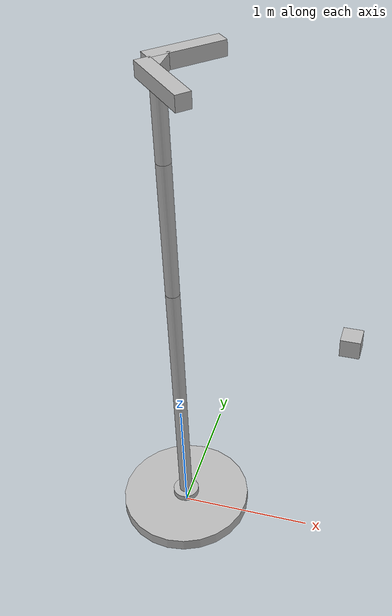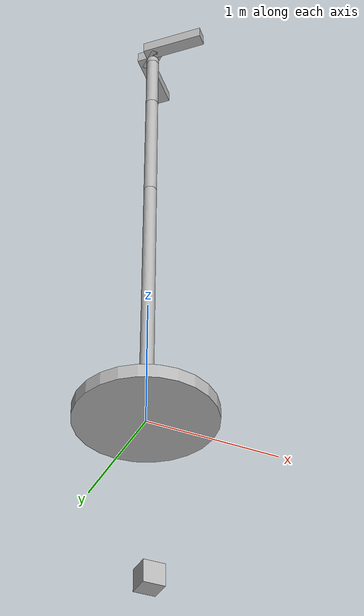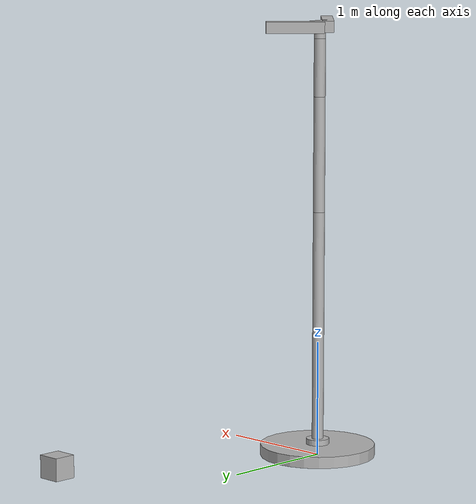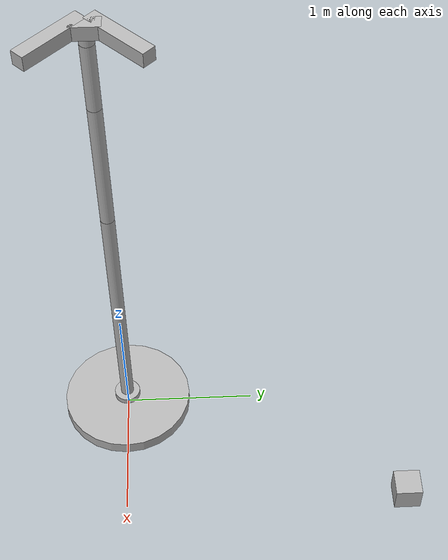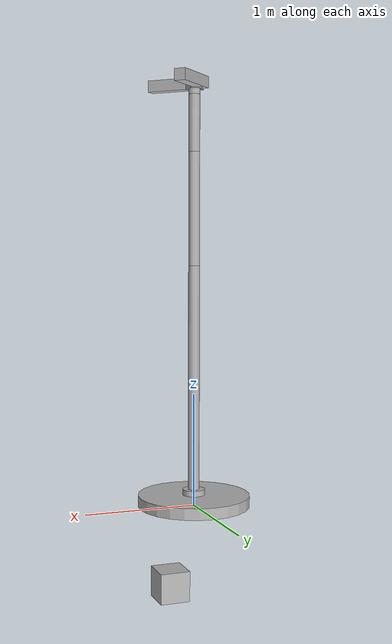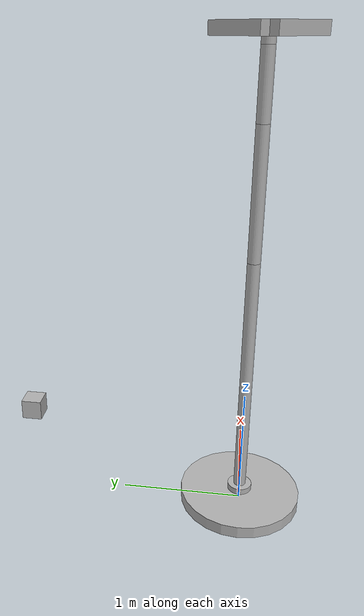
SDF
<?xml version='1.0'?>
<sdf version='1.4'>
    <model name="my_robot">
        <static>false</static>
        <self_collide>1</self_collide>
        <link name='chassis'>
            <pose>0 0 .05 0 0 0</pose>
            <inertial>
                <mass>50</mass>
            </inertial>
            <collision name='collision'>
                <geometry>
                    <cylinder>
                        <radius>.5</radius>
                        <length>.1</length>
                    </cylinder>
                </geometry>
            </collision>

            <visual name='visual'>
                <geometry>
                    <cylinder>
                        <radius>.5</radius>
                        <length>.1</length>
                    </cylinder>
                </geometry>
            </visual>
        </link>
        <link name='arm1'>
            <pose>0 0 .125 0 0 0</pose>

            <collision name='collision'>
                <geometry>
                    <cylinder>
                        <radius>.1</radius>
                        <length>.05</length>
                    </cylinder>
                </geometry>
            </collision>

            <visual name='visual'>
                <geometry>
                    <cylinder>
                        <radius>.1</radius>
                        <length>.05</length>
                    </cylinder>
                </geometry>
            </visual>
        </link>
        <link name='arm2'>
            <pose>0 0 1.15 0 0 0</pose>

            <collision name='collision'>
                <geometry>
                    <cylinder>
                        <radius>.05</radius>
                        <length>2.0</length>
                    </cylinder>
                </geometry>
            </collision>

            <visual name='visual'>
                <geometry>
                    <cylinder>
                        <radius>.05</radius>
                        <length>2.0</length>
                    </cylinder>
                </geometry>
            </visual>
        </link>
        <link name='arm3'>
            <pose>0 0 2.65 0 0 0</pose>
            <gravity>0</gravity>
            <collision name='collision'>
                <geometry>
                    <cylinder>
                        <radius>.05</radius>
                        <length>1</length>
                    </cylinder>
                </geometry>
            </collision>

            <visual name='visual'>
                <geometry>
                    <cylinder>
                        <radius>.05</radius>
                        <length>1</length>
                    </cylinder>
                </geometry>
            </visual>
        </link>
        <link name='arm4'>
            <pose>0 0 3.4 0 0 0</pose>
            <gravity>0</gravity>
            <collision name='collision'>
                <geometry>
                    <cylinder>
                        <radius>.05</radius>
                        <length>.5</length>
                    </cylinder>
                </geometry>
            </collision>

            <visual name='visual'>
                <geometry>
                    <cylinder>
                        <radius>.05</radius>
                        <length>.5</length>
                    </cylinder>
                </geometry>
            </visual>
        </link>
        <link name='arm5'>
            <pose>0 0 3.675 0 0 0</pose>

            <collision name='collision'>
                <geometry>
                    <cylinder>
                        <radius>.05</radius>
                        <length>0.05</length>
                    </cylinder>
                </geometry>
            </collision>

            <visual name='visual'>
                <geometry>
                    <cylinder>
                        <radius>.05</radius>
                        <length>0.05</length>
                    </cylinder>
                </geometry>
            </visual>
        </link>

        <link name="palm">
            <pose>0.0 0.0 3.75 0 0 0</pose>
            <inertial>
                <inertia>
                    <ixx>0.01</ixx>
                    <ixy>0</ixy>
                    <ixz>0</ixz>
                    <iyy>0.01</iyy>
                    <iyz>0</iyz>
                    <izz>0.01</izz>
                </inertia>
                <mass>0.5</mass>
            </inertial>
            <collision name="collision">
                <geometry>
                    <box>
                        <size>0.1 0.2 0.1</size>
                    </box>
                </geometry>
            </collision>
            <visual name="visual">
                <geometry>
                    <box>
                        <size>0.1 0.2 0.1</size>
                    </box>
                </geometry>
                <material>
                    <script>Gazebo/Red</script>
                </material>
            </visual>
        </link>
        <link name="left_finger">
            <pose>0.1 0.2 3.75 0 0 -0.78539</pose>
            <gravity>0</gravity>
            <inertial>
                <inertia>
                    <ixx>0.01</ixx>
                    <ixy>0</ixy>
                    <ixz>0</ixz>
                    <iyy>0.01</iyy>
                    <iyz>0</iyz>
                    <izz>0.01</izz>
                </inertia>
                <mass>0.01</mass>
            </inertial>
            <collision name="collision">
                <geometry>
                    <box>
                        <size>0.1 0.3 0.1</size>
                    </box>
                </geometry>
            </collision>
            <visual name="visual">
                <geometry>
                    <box>
                        <size>0.1 0.5 0.1</size>
                    </box>
                </geometry>
                <material>
                    <script>Gazebo/Blue</script>
                </material>
            </visual>
        </link>
        <link name="right_finger">
            <pose>0.1 -0.2 3.75 0 0 .78539</pose>
            <gravity>0</gravity>
            <inertial>
                <inertia>
                    <ixx>0.01</ixx>
                    <ixy>0</ixy>
                    <ixz>0</ixz>
                    <iyy>0.01</iyy>
                    <iyz>0</iyz>
                    <izz>0.01</izz>
                </inertia>
                <mass>0.01</mass>
            </inertial>
            <collision name="collision">
                <geometry>
                    <box>
                        <size>0.1 0.5 0.1</size>
                    </box>
                </geometry>
            </collision>
            <visual name="visual">
                <geometry>
                    <box>
                        <size>0.1 0.5 0.1</size>
                    </box>
                </geometry>
                <material>
                    <script>Gazebo/Green</script>
                </material>
            </visual>
        </link>

        <model name="box">
            <static>false</static>
            <link name="box">
                <inertial>
                    <mass>0.05</mass>
                    <inertia> <!-- inertias are tricky to compute -->
                    <!-- http://gazebosim.org/tutorials?tut=inertia&cat=build_robot -->
                    <ixx>0.00107568</ixx>       <!-- for a box: ixx = 0.083 * mass * (y*y + z*z) 0.0648 -->
                    <ixy>0.0</ixy>         <!-- for a box: ixy = 0 -->
                    <ixz>0.0</ixz>         <!-- for a box: ixz = 0 -->
                    <iyy>0.00107568</iyy>       <!-- for a box: iyy = 0.083 * mass * (x*x + z*z) -->
                    <iyz>0.0</iyz>         <!-- for a box: iyz = 0 -->
                    <izz>0.00107568</izz>       <!-- for a box: izz = 0.083 * mass * (x*x + y*y) -->
                    </inertia>
                </inertial>

                <pose>1.0 2.15 0.1 0 0 0</pose>

                <collision name="collision">
                    <geometry>
                    <box>
                        <size>0.2 0.2 0.2</size>
                    </box>
                    </geometry>
                    <surface>
                        <friction>
                            <ode>
                                <mu>1000.0</mu>
                                <mu2>1000.0</mu2>
                                <kp>1000000.0</kp>
                                <kd>100000.0</kd>
                                <slip1>0</slip1>
                                <slip2>0</slip2>
                                <minDepth>0.001</minDepth>
                                <maxVel>0</maxVel>
                            </ode>
                            <torsional>
                                <coefficient>1000.0</coefficient>
                                <patch_radius>0.1</patch_radius>
                                <slip>0</slip>
                            </torsional>
                        </friction>
                    </surface>
                </collision>
                <visual name="visual">
                    <geometry>
                    <box>
                        <size>0.2 0.2 0.2</size>
                    </box>
                    </geometry>
                </visual>
            </link>
        </model>

        <joint type="revolute" name="chasis_arm1_joint">
            <pose>0 0 -0.025 0 0 0</pose>
            <child>arm1</child>
            <parent>chassis</parent>
            <axis>
                <xyz>0 0 1</xyz>
            </axis>
        </joint>
         <joint type="revolute" name="arm1_arm2_joint">
            <pose>0 0 -1 0 0 0</pose>
            <child>arm2</child>
            <parent>arm1</parent>
            <axis>
                <xyz>1 0 0</xyz>
            </axis>
        </joint>
        <joint name="arm2_arm3_joint" type="revolute">
            <parent>arm2</parent>
            <child>arm3</child>
            <pose>0 0 -0.5 0 0 0</pose>
            <axis>
                <xyz>1 0 0</xyz>
                <dynamics>
                    <damping>1.0</damping>
                    <limit>
                        <lower>1.0</lower>
                        <upper>1.0</upper>
                        <effort>40</effort>
                        <velocity>1.0</velocity>
                    </limit>
                </dynamics>
            </axis>
        </joint>

        <joint name="arm3_arm4_joint" type="revolute">
            <parent>arm3</parent>
            <child>arm4</child>
            <pose>0 0 -0.25 0 0 0</pose>
            <axis>
                <xyz>1 0 0</xyz>
                <dynamics>
                    <damping>1.0</damping>
                    <limit>
                        <lower>1.0</lower>
                        <upper>1.0</upper>
                        <effort>40</effort>
                        <velocity>1.0</velocity>
                    </limit>
                </dynamics>
            </axis>
        </joint>
        <joint type="revolute" name="arm4_arm5_joint">
            <pose>0 0 -0.025 0 0 0</pose>
            <child>arm5</child>
            <parent>arm4</parent>
            <axis>
            <dynamics>
                    <damping>1.0</damping>
                    <limit>
                        <lower>1.0</lower>
                        <upper>1.0</upper>
                        <effort>40</effort>
                        <velocity>1.0</velocity>
                    </limit>
                </dynamics>
                <xyz>0 1 0</xyz>
            </axis>
        </joint>

        <joint name="palm_riser" type="revolute">
            <pose>0 0 -0.05 0 0 0</pose>
            <child>palm</child>
            <parent>arm5</parent>
            <axis>
            <dynamics>
                    <damping>1.0</damping>
                    <limit>
                        <lower>1.0</lower>
                        <upper>1.0</upper>
                        <effort>40</effort>
                        <velocity>1.0</velocity>
                    </limit>
                </dynamics>
                <xyz>0 0 1</xyz>
            </axis>
        </joint>

        <!-- new jointed -->
        <joint name="palm_left_finger" type="revolute">
            <pose>0 -0.15 0 0 0 0</pose>
            <child>left_finger</child>
            <parent>palm</parent>
            <axis>
                <dynamics>
                    <damping>1.0</damping>
                    <friction>.3</friction>
                    <limit>
                        <lower>1.0</lower>
                        <upper>1.0</upper>
                        <effort>40</effort>
                        <velocity>1.0</velocity>
                    </limit>
                </dynamics>
                <xyz>0 0 1</xyz>
            </axis>
        </joint>

        <joint name="palm_right_finger" type="revolute">
            <pose>0 0.15 0 0 0 0</pose>
            <child>right_finger</child>
            <parent>palm</parent>
            <axis>
                <dynamics>
                    <damping>1.0</damping>
                    <friction>.3</friction>
                    <limit>
                        <lower>1.0</lower>
                        <upper>1.0</upper>
                        <effort>40</effort>
                        <velocity>1.0</velocity>
                    </limit>
                </dynamics>
                <xyz>0 0 1</xyz>
            </axis>
        </joint>
        <plugin name="arm_control" filename="libarm_gazebo.so" />
        <plugin name="grip_control" filename="libGRIPPER.so" />
        <plugin name="ik_control" filename="libINVERSE_K.so" />

    </model>
</sdf>
